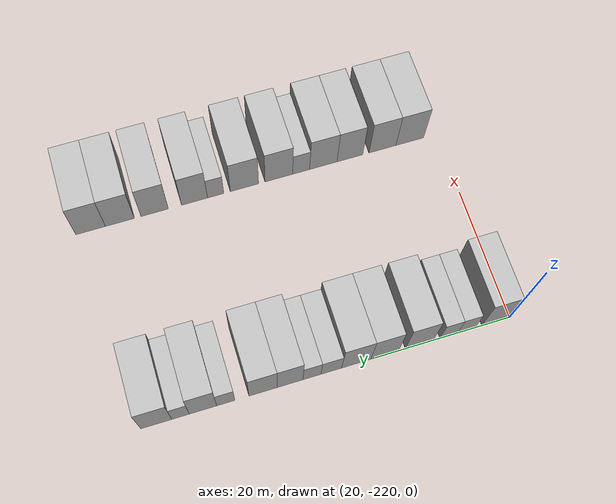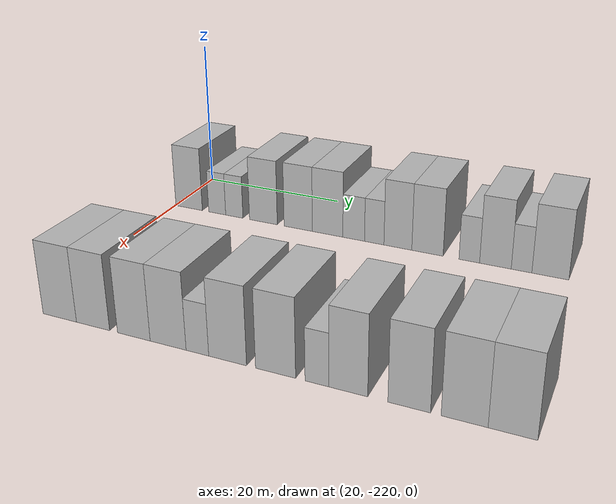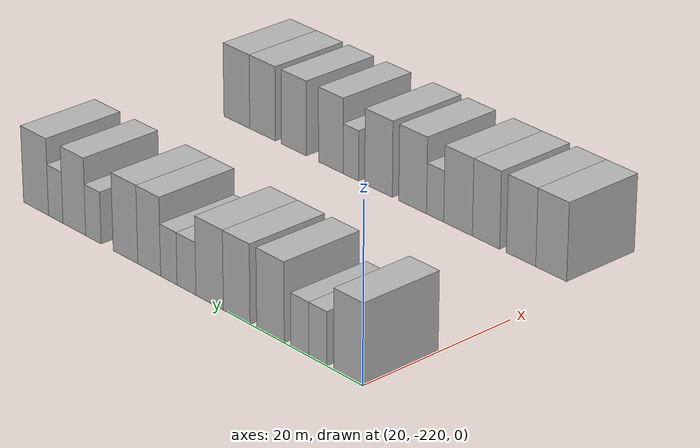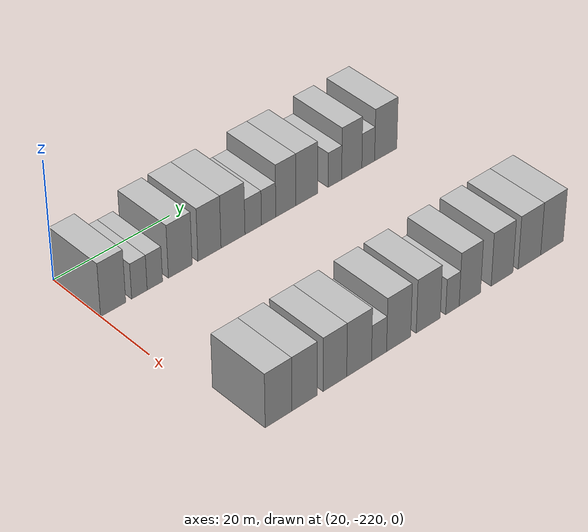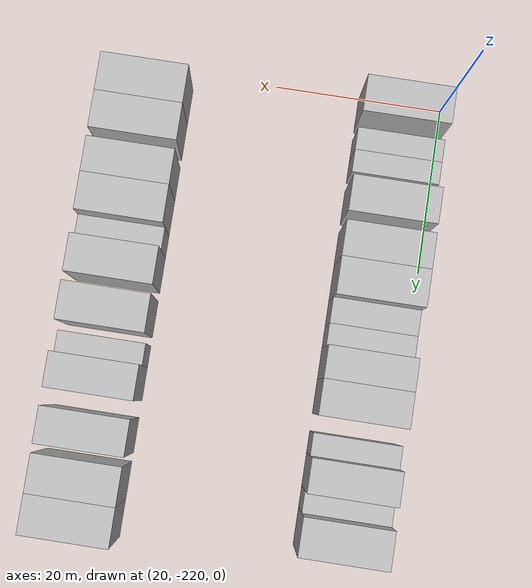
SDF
<sdf version="1.6">
 <world name="default">
  <model name="building_1">
   <static>1</static>
   <pose>25.0000 -217.8961 0 0.000000 0.000000 0.000000</pose>
   <link name="link">
    <pose>0 0 4.50 0 0 0</pose>
    <collision name="collision"><geometry><box><size>10.0000 4.2077 9.0000</size></box></geometry></collision>
    <visual name="visual">
     <cast_shadows>0</cast_shadows>
     <geometry><box><size>10.0000 4.2077 9.0000</size></box></geometry>
     <material>
      <script>
       <uri>model://HANNAS_wall/materials/scripts</uri>
       <uri>model://HANNAS_wall/materials/textures</uri>
       <name>vrc/HANNAS_wall</name>
      </script>
     </material>
    </visual>
   </link>
  </model>
  <model name="building_2">
   <static>1</static>
   <pose>25.0000 -213.4765 0 0.000000 0.000000 0.000000</pose>
   <link name="link">
    <pose>0 0 3.00 0 0 0</pose>
    <collision name="collision"><geometry><box><size>10.0000 2.6316 6.0000</size></box></geometry></collision>
    <visual name="visual">
     <cast_shadows>0</cast_shadows>
     <geometry><box><size>10.0000 2.6316 6.0000</size></box></geometry>
     <material>
      <script>
       <uri>model://HANNAS_wall/materials/scripts</uri>
       <uri>model://HANNAS_wall/materials/textures</uri>
       <name>vrc/HANNAS_wall</name>
      </script>
     </material>
    </visual>
   </link>
  </model>
  <model name="building_3">
   <static>1</static>
   <pose>25.0000 -210.8408 0 0.000000 0.000000 0.000000</pose>
   <link name="link">
    <pose>0 0 3.00 0 0 0</pose>
    <collision name="collision"><geometry><box><size>10.0000 2.6396 6.0000</size></box></geometry></collision>
    <visual name="visual">
     <cast_shadows>0</cast_shadows>
     <geometry><box><size>10.0000 2.6396 6.0000</size></box></geometry>
     <material>
      <script>
       <uri>model://HANNAS_wall/materials/scripts</uri>
       <uri>model://HANNAS_wall/materials/textures</uri>
       <name>vrc/HANNAS_wall</name>
      </script>
     </material>
    </visual>
   </link>
  </model>
  <model name="building_4">
   <static>1</static>
   <pose>25.0000 -206.4568 0 0.000000 0.000000 0.000000</pose>
   <link name="link">
    <pose>0 0 4.50 0 0 0</pose>
    <collision name="collision"><geometry><box><size>10.0000 4.1285 9.0000</size></box></geometry></collision>
    <visual name="visual">
     <cast_shadows>0</cast_shadows>
     <geometry><box><size>10.0000 4.1285 9.0000</size></box></geometry>
     <material>
      <script>
       <uri>model://HANNAS_wall/materials/scripts</uri>
       <uri>model://HANNAS_wall/materials/textures</uri>
       <name>vrc/HANNAS_wall</name>
      </script>
     </material>
    </visual>
   </link>
  </model>
  <model name="building_5">
   <static>1</static>
   <pose>25.0000 -201.3536 0 0.000000 0.000000 0.000000</pose>
   <link name="link">
    <pose>0 0 4.50 0 0 0</pose>
    <collision name="collision"><geometry><box><size>10.0000 4.0779 9.0000</size></box></geometry></collision>
    <visual name="visual">
     <cast_shadows>0</cast_shadows>
     <geometry><box><size>10.0000 4.0779 9.0000</size></box></geometry>
     <material>
      <script>
       <uri>model://HANNAS_wall/materials/scripts</uri>
       <uri>model://HANNAS_wall/materials/textures</uri>
       <name>vrc/HANNAS_wall</name>
      </script>
     </material>
    </visual>
   </link>
  </model>
  <model name="building_6">
   <static>1</static>
   <pose>25.0000 -197.1710 0 0.000000 0.000000 0.000000</pose>
   <link name="link">
    <pose>0 0 4.50 0 0 0</pose>
    <collision name="collision"><geometry><box><size>10.0000 4.2873 9.0000</size></box></geometry></collision>
    <visual name="visual">
     <cast_shadows>0</cast_shadows>
     <geometry><box><size>10.0000 4.2873 9.0000</size></box></geometry>
     <material>
      <script>
       <uri>model://HANNAS_wall/materials/scripts</uri>
       <uri>model://HANNAS_wall/materials/textures</uri>
       <name>vrc/HANNAS_wall</name>
      </script>
     </material>
    </visual>
   </link>
  </model>
  <model name="building_7">
   <static>1</static>
   <pose>25.0000 -193.5384 0 0.000000 0.000000 0.000000</pose>
   <link name="link">
    <pose>0 0 3.00 0 0 0</pose>
    <collision name="collision"><geometry><box><size>10.0000 2.9780 6.0000</size></box></geometry></collision>
    <visual name="visual">
     <cast_shadows>0</cast_shadows>
     <geometry><box><size>10.0000 2.9780 6.0000</size></box></geometry>
     <material>
      <script>
       <uri>model://HANNAS_wall/materials/scripts</uri>
       <uri>model://HANNAS_wall/materials/textures</uri>
       <name>vrc/HANNAS_wall</name>
      </script>
     </material>
    </visual>
   </link>
  </model>
  <model name="building_8">
   <static>1</static>
   <pose>25.0000 -190.7405 0 0.000000 0.000000 0.000000</pose>
   <link name="link">
    <pose>0 0 3.00 0 0 0</pose>
    <collision name="collision"><geometry><box><size>10.0000 2.6176 6.0000</size></box></geometry></collision>
    <visual name="visual">
     <cast_shadows>0</cast_shadows>
     <geometry><box><size>10.0000 2.6176 6.0000</size></box></geometry>
     <material>
      <script>
       <uri>model://HANNAS_wall/materials/scripts</uri>
       <uri>model://HANNAS_wall/materials/textures</uri>
       <name>vrc/HANNAS_wall</name>
      </script>
     </material>
    </visual>
   </link>
  </model>
  <model name="building_9">
   <static>1</static>
   <pose>25.0000 -187.5881 0 0.000000 0.000000 0.000000</pose>
   <link name="link">
    <pose>0 0 4.50 0 0 0</pose>
    <collision name="collision"><geometry><box><size>10.0000 3.6871 9.0000</size></box></geometry></collision>
    <visual name="visual">
     <cast_shadows>0</cast_shadows>
     <geometry><box><size>10.0000 3.6871 9.0000</size></box></geometry>
     <material>
      <script>
       <uri>model://HANNAS_wall/materials/scripts</uri>
       <uri>model://HANNAS_wall/materials/textures</uri>
       <name>vrc/HANNAS_wall</name>
      </script>
     </material>
    </visual>
   </link>
  </model>
  <model name="building_10">
   <static>1</static>
   <pose>25.0000 -183.7218 0 0.000000 0.000000 0.000000</pose>
   <link name="link">
    <pose>0 0 4.50 0 0 0</pose>
    <collision name="collision"><geometry><box><size>10.0000 4.0456 9.0000</size></box></geometry></collision>
    <visual name="visual">
     <cast_shadows>0</cast_shadows>
     <geometry><box><size>10.0000 4.0456 9.0000</size></box></geometry>
     <material>
      <script>
       <uri>model://HANNAS_wall/materials/scripts</uri>
       <uri>model://HANNAS_wall/materials/textures</uri>
       <name>vrc/HANNAS_wall</name>
      </script>
     </material>
    </visual>
   </link>
  </model>
  <model name="building_11">
   <static>1</static>
   <pose>25.0000 -178.4140 0 0.000000 0.000000 0.000000</pose>
   <link name="link">
    <pose>0 0 3.00 0 0 0</pose>
    <collision name="collision"><geometry><box><size>10.0000 2.5701 6.0000</size></box></geometry></collision>
    <visual name="visual">
     <cast_shadows>0</cast_shadows>
     <geometry><box><size>10.0000 2.5701 6.0000</size></box></geometry>
     <material>
      <script>
       <uri>model://HANNAS_wall/materials/scripts</uri>
       <uri>model://HANNAS_wall/materials/textures</uri>
       <name>vrc/HANNAS_wall</name>
      </script>
     </material>
    </visual>
   </link>
  </model>
  <model name="building_12">
   <static>1</static>
   <pose>25.0000 -175.1994 0 0.000000 0.000000 0.000000</pose>
   <link name="link">
    <pose>0 0 4.50 0 0 0</pose>
    <collision name="collision"><geometry><box><size>10.0000 3.8590 9.0000</size></box></geometry></collision>
    <visual name="visual">
     <cast_shadows>0</cast_shadows>
     <geometry><box><size>10.0000 3.8590 9.0000</size></box></geometry>
     <material>
      <script>
       <uri>model://HANNAS_wall/materials/scripts</uri>
       <uri>model://HANNAS_wall/materials/textures</uri>
       <name>vrc/HANNAS_wall</name>
      </script>
     </material>
    </visual>
   </link>
  </model>
  <model name="building_13">
   <static>1</static>
   <pose>25.0000 -172.0381 0 0.000000 0.000000 0.000000</pose>
   <link name="link">
    <pose>0 0 3.00 0 0 0</pose>
    <collision name="collision"><geometry><box><size>10.0000 2.4635 6.0000</size></box></geometry></collision>
    <visual name="visual">
     <cast_shadows>0</cast_shadows>
     <geometry><box><size>10.0000 2.4635 6.0000</size></box></geometry>
     <material>
      <script>
       <uri>model://HANNAS_wall/materials/scripts</uri>
       <uri>model://HANNAS_wall/materials/textures</uri>
       <name>vrc/HANNAS_wall</name>
      </script>
     </material>
    </visual>
   </link>
  </model>
  <model name="building_14">
   <static>1</static>
   <pose>25.0000 -168.6430 0 0.000000 0.000000 0.000000</pose>
   <link name="link">
    <pose>0 0 4.50 0 0 0</pose>
    <collision name="collision"><geometry><box><size>10.0000 4.3266 9.0000</size></box></geometry></collision>
    <visual name="visual">
     <cast_shadows>0</cast_shadows>
     <geometry><box><size>10.0000 4.3266 9.0000</size></box></geometry>
     <material>
      <script>
       <uri>model://HANNAS_wall/materials/scripts</uri>
       <uri>model://HANNAS_wall/materials/textures</uri>
       <name>vrc/HANNAS_wall</name>
      </script>
     </material>
    </visual>
   </link>
  </model>
  <model name="building_107">
   <static>1</static>
   <pose>55.0000 -215.7790 0 0.000000 0.000000 0.000000</pose>
   <link name="link">
    <pose>0 0 4.50 0 0 0</pose>
    <collision name="collision"><geometry><box><size>10.0000 4.4420 9.0000</size></box></geometry></collision>
    <visual name="visual">
     <cast_shadows>0</cast_shadows>
     <geometry><box><size>10.0000 4.4420 9.0000</size></box></geometry>
     <material>
      <script>
       <uri>model://HANNAS_wall/materials/scripts</uri>
       <uri>model://HANNAS_wall/materials/textures</uri>
       <name>vrc/HANNAS_wall</name>
      </script>
     </material>
    </visual>
   </link>
  </model>
  <model name="building_108">
   <static>1</static>
   <pose>55.0000 -211.4165 0 0.000000 0.000000 0.000000</pose>
   <link name="link">
    <pose>0 0 4.50 0 0 0</pose>
    <collision name="collision"><geometry><box><size>10.0000 4.2831 9.0000</size></box></geometry></collision>
    <visual name="visual">
     <cast_shadows>0</cast_shadows>
     <geometry><box><size>10.0000 4.2831 9.0000</size></box></geometry>
     <material>
      <script>
       <uri>model://HANNAS_wall/materials/scripts</uri>
       <uri>model://HANNAS_wall/materials/textures</uri>
       <name>vrc/HANNAS_wall</name>
      </script>
     </material>
    </visual>
   </link>
  </model>
  <model name="building_109">
   <static>1</static>
   <pose>55.0000 -206.2473 0 0.000000 0.000000 0.000000</pose>
   <link name="link">
    <pose>0 0 4.50 0 0 0</pose>
    <collision name="collision"><geometry><box><size>10.0000 4.0553 9.0000</size></box></geometry></collision>
    <visual name="visual">
     <cast_shadows>0</cast_shadows>
     <geometry><box><size>10.0000 4.0553 9.0000</size></box></geometry>
     <material>
      <script>
       <uri>model://HANNAS_wall/materials/scripts</uri>
       <uri>model://HANNAS_wall/materials/textures</uri>
       <name>vrc/HANNAS_wall</name>
      </script>
     </material>
    </visual>
   </link>
  </model>
  <model name="building_110">
   <static>1</static>
   <pose>55.0000 -202.0611 0 0.000000 0.000000 0.000000</pose>
   <link name="link">
    <pose>0 0 4.50 0 0 0</pose>
    <collision name="collision"><geometry><box><size>10.0000 4.3172 9.0000</size></box></geometry></collision>
    <visual name="visual">
     <cast_shadows>0</cast_shadows>
     <geometry><box><size>10.0000 4.3172 9.0000</size></box></geometry>
     <material>
      <script>
       <uri>model://HANNAS_wall/materials/scripts</uri>
       <uri>model://HANNAS_wall/materials/textures</uri>
       <name>vrc/HANNAS_wall</name>
      </script>
     </material>
    </visual>
   </link>
  </model>
  <model name="building_111">
   <static>1</static>
   <pose>55.0000 -198.5797 0 0.000000 0.000000 0.000000</pose>
   <link name="link">
    <pose>0 0 3.00 0 0 0</pose>
    <collision name="collision"><geometry><box><size>10.0000 2.6455 6.0000</size></box></geometry></collision>
    <visual name="visual">
     <cast_shadows>0</cast_shadows>
     <geometry><box><size>10.0000 2.6455 6.0000</size></box></geometry>
     <material>
      <script>
       <uri>model://HANNAS_wall/materials/scripts</uri>
       <uri>model://HANNAS_wall/materials/textures</uri>
       <name>vrc/HANNAS_wall</name>
      </script>
     </material>
    </visual>
   </link>
  </model>
  <model name="building_112">
   <static>1</static>
   <pose>55.0000 -195.1062 0 0.000000 0.000000 0.000000</pose>
   <link name="link">
    <pose>0 0 4.50 0 0 0</pose>
    <collision name="collision"><geometry><box><size>10.0000 4.3015 9.0000</size></box></geometry></collision>
    <visual name="visual">
     <cast_shadows>0</cast_shadows>
     <geometry><box><size>10.0000 4.3015 9.0000</size></box></geometry>
     <material>
      <script>
       <uri>model://HANNAS_wall/materials/scripts</uri>
       <uri>model://HANNAS_wall/materials/textures</uri>
       <name>vrc/HANNAS_wall</name>
      </script>
     </material>
    </visual>
   </link>
  </model>
  <model name="building_113">
   <static>1</static>
   <pose>55.0000 -189.7731 0 0.000000 0.000000 0.000000</pose>
   <link name="link">
    <pose>0 0 4.50 0 0 0</pose>
    <collision name="collision"><geometry><box><size>10.0000 4.3645 9.0000</size></box></geometry></collision>
    <visual name="visual">
     <cast_shadows>0</cast_shadows>
     <geometry><box><size>10.0000 4.3645 9.0000</size></box></geometry>
     <material>
      <script>
       <uri>model://HANNAS_wall/materials/scripts</uri>
       <uri>model://HANNAS_wall/materials/textures</uri>
       <name>vrc/HANNAS_wall</name>
      </script>
     </material>
    </visual>
   </link>
  </model>
  <model name="building_114">
   <static>1</static>
   <pose>55.0000 -185.3471 0 0.000000 0.000000 0.000000</pose>
   <link name="link">
    <pose>0 0 3.00 0 0 0</pose>
    <collision name="collision"><geometry><box><size>10.0000 2.4875 6.0000</size></box></geometry></collision>
    <visual name="visual">
     <cast_shadows>0</cast_shadows>
     <geometry><box><size>10.0000 2.4875 6.0000</size></box></geometry>
     <material>
      <script>
       <uri>model://HANNAS_wall/materials/scripts</uri>
       <uri>model://HANNAS_wall/materials/textures</uri>
       <name>vrc/HANNAS_wall</name>
      </script>
     </material>
    </visual>
   </link>
  </model>
  <model name="building_115">
   <static>1</static>
   <pose>55.0000 -182.1144 0 0.000000 0.000000 0.000000</pose>
   <link name="link">
    <pose>0 0 4.50 0 0 0</pose>
    <collision name="collision"><geometry><box><size>10.0000 3.9780 9.0000</size></box></geometry></collision>
    <visual name="visual">
     <cast_shadows>0</cast_shadows>
     <geometry><box><size>10.0000 3.9780 9.0000</size></box></geometry>
     <material>
      <script>
       <uri>model://HANNAS_wall/materials/scripts</uri>
       <uri>model://HANNAS_wall/materials/textures</uri>
       <name>vrc/HANNAS_wall</name>
      </script>
     </material>
    </visual>
   </link>
  </model>
  <model name="building_116">
   <static>1</static>
   <pose>55.0000 -176.0581 0 0.000000 0.000000 0.000000</pose>
   <link name="link">
    <pose>0 0 4.50 0 0 0</pose>
    <collision name="collision"><geometry><box><size>10.0000 4.1346 9.0000</size></box></geometry></collision>
    <visual name="visual">
     <cast_shadows>0</cast_shadows>
     <geometry><box><size>10.0000 4.1346 9.0000</size></box></geometry>
     <material>
      <script>
       <uri>model://HANNAS_wall/materials/scripts</uri>
       <uri>model://HANNAS_wall/materials/textures</uri>
       <name>vrc/HANNAS_wall</name>
      </script>
     </material>
    </visual>
   </link>
  </model>
  <model name="building_117">
   <static>1</static>
   <pose>55.0000 -170.8173 0 0.000000 0.000000 0.000000</pose>
   <link name="link">
    <pose>0 0 4.50 0 0 0</pose>
    <collision name="collision"><geometry><box><size>10.0000 4.3470 9.0000</size></box></geometry></collision>
    <visual name="visual">
     <cast_shadows>0</cast_shadows>
     <geometry><box><size>10.0000 4.3470 9.0000</size></box></geometry>
     <material>
      <script>
       <uri>model://HANNAS_wall/materials/scripts</uri>
       <uri>model://HANNAS_wall/materials/textures</uri>
       <name>vrc/HANNAS_wall</name>
      </script>
     </material>
    </visual>
   </link>
  </model>
  <model name="building_118">
   <static>1</static>
   <pose>55.0000 -166.4318 0 0.000000 0.000000 0.000000</pose>
   <link name="link">
    <pose>0 0 4.50 0 0 0</pose>
    <collision name="collision"><geometry><box><size>10.0000 4.4240 9.0000</size></box></geometry></collision>
    <visual name="visual">
     <cast_shadows>0</cast_shadows>
     <geometry><box><size>10.0000 4.4240 9.0000</size></box></geometry>
     <material>
      <script>
       <uri>model://HANNAS_wall/materials/scripts</uri>
       <uri>model://HANNAS_wall/materials/textures</uri>
       <name>vrc/HANNAS_wall</name>
      </script>
     </material>
    </visual>
   </link>
  </model>
 </world>
</sdf>
